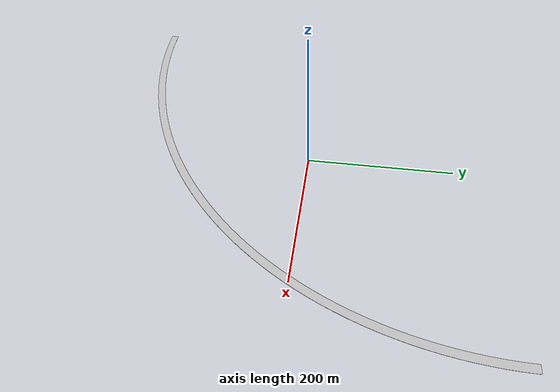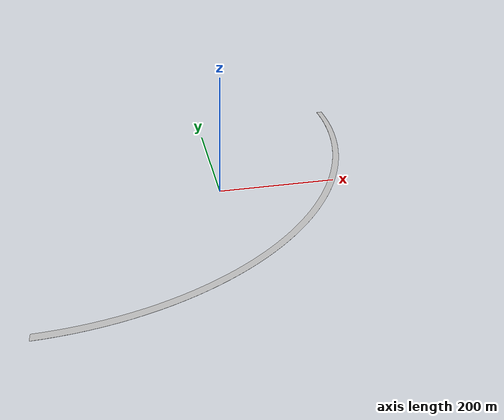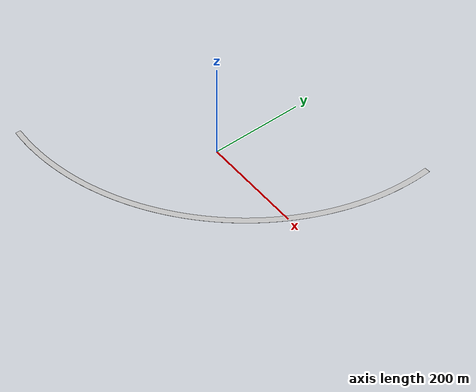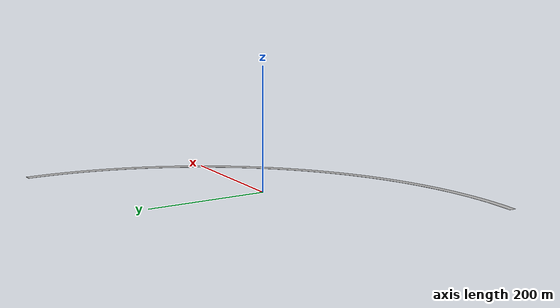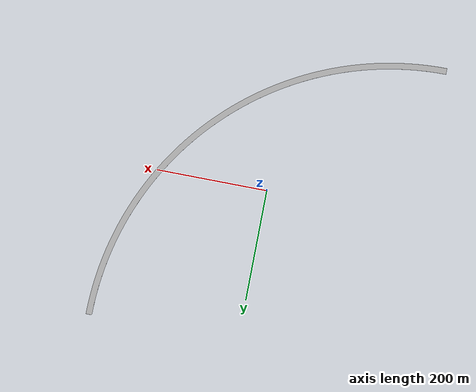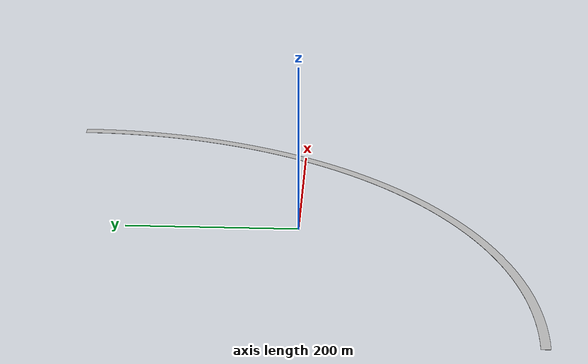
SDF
<?xml version="1.0" ?>
<sdf version="1.4">
  <model name="(DS) Right Road - 1000m">
    <static>true</static>
    <link name="link">
      <inertial>
        <pose>0 0 0 0 0 0</pose>
        <mass>1</mass>
        <inertia>
          <ixx>1</ixx>
          <iyy>1</iyy>
          <izz>1</izz>
          <ixy>0</ixy>
          <ixz>0</ixz>
        </inertia>
      </inertial>
      <collision name="collision">
        <geometry>
          <mesh>
            <uri>model://ds_right_road_1000m/meshes/curved_road_1000m.dae</uri>
          </mesh>
        </geometry>
      </collision>

      <visual name="visual">
        <geometry>
          <mesh>
            <uri>model://ds_right_road_1000m/meshes/curved_road_1000m.dae</uri>
          </mesh>
        </geometry>
      </visual>
    </link>
  </model>
</sdf>
